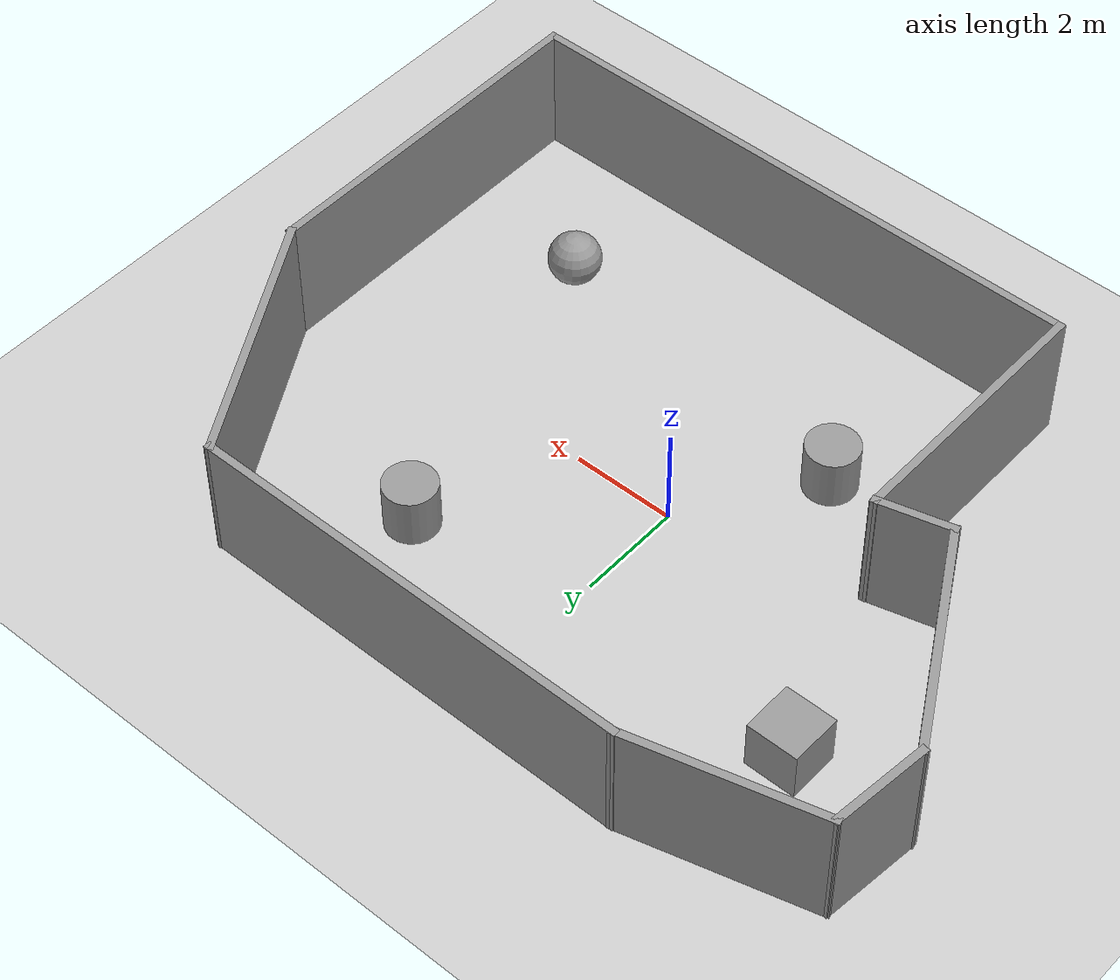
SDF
<sdf version="1.7">
 <world name="default">
  <light name="sun" type="directional">
   <pose>0 0 10 0 -0 0</pose>
   <diffuse>0.8 0.8 0.8 1</diffuse>
   <specular>0.2 0.2 0.2 1</specular>
   <attenuation>
    <range>1000</range>
    <constant>0.9</constant>
    <linear>0.01</linear>
    <quadratic>0.001</quadratic>
   </attenuation>
   <direction>-0.5 0.1 -0.9</direction>
   <spot><inner_angle>0</inner_angle><outer_angle>0</outer_angle><falloff>0</falloff></spot>
  </light>
  <model name="ground_plane">
   <static>1</static>
   <link name="link">
    <collision name="collision">
     <geometry><plane><normal>0 0 1</normal><size>100 100</size></plane></geometry>
     <surface>
      <contact><collide_bitmask>65535</collide_bitmask></contact>
      <friction><ode><mu>100</mu><mu2>50</mu2></ode></friction>
     </surface>
    </collision>
    <visual name="visual">
     <cast_shadows>0</cast_shadows>
     <geometry><plane><normal>0 0 1</normal><size>100 100</size></plane></geometry>
     <material>
      <script><uri>file://media/materials/scripts/gazebo.material</uri><name>Gazebo/Grey</name></script>
     </material>
    </visual>
   </link>
  </model>
  <gravity>0 0 -9.8</gravity>
  <magnetic_field>6e-06 2.3e-05 -4.2e-05</magnetic_field>
  <atmosphere type="adiabatic"/>
  <physics type="ode">
   <max_step_size>0.001</max_step_size>
   <real_time_factor>1</real_time_factor>
   <real_time_update_rate>1000</real_time_update_rate>
  </physics>
  <scene><ambient>0.4 0.4 0.4 1</ambient><background>0.7 0.7 0.7 1</background><shadows>1</shadows></scene>
  <audio><device>default</device></audio>
  <spherical_coordinates>
   <surface_model>EARTH_WGS84</surface_model>
   <latitude_deg>0</latitude_deg>
   <longitude_deg>0</longitude_deg>
   <elevation>0</elevation>
   <heading_deg>0</heading_deg>
  </spherical_coordinates>
  <model name="mywalls">
   <pose>0.370457 -0.248995 0 0 -0 0</pose>
   <link name="Wall_10">
    <collision name="Wall_10_Collision">
     <geometry><box><size>4.5 0.15 2.5</size></box></geometry>
     <pose>0 0 1.25 0 -0 0</pose>
    </collision>
    <visual name="Wall_10_Visual">
     <pose>0 0 1.25 0 -0 0</pose>
     <geometry><box><size>4.5 0.15 2.5</size></box></geometry>
     <material>
      <script><uri>file://media/materials/scripts/gazebo.material</uri><name>Gazebo/Grey</name></script>
      <ambient>1 1 1 1</ambient>
     </material>
     <meta><layer>0</layer></meta>
    </visual>
    <pose>-6.327 0.987109 0 0 -0 2.0944</pose>
   </link>
   <link name="Wall_12">
    <collision name="Wall_12_Collision">
     <geometry><box><size>5.25 0.15 2.5</size></box></geometry>
     <pose>0 0 1.25 0 -0 0</pose>
    </collision>
    <visual name="Wall_12_Visual">
     <pose>0 0 1.25 0 -0 0</pose>
     <geometry><box><size>5.25 0.15 2.5</size></box></geometry>
     <material>
      <script><uri>file://media/materials/scripts/gazebo.material</uri><name>Gazebo/Grey</name></script>
      <ambient>1 1 1 1</ambient>
     </material>
     <meta><layer>0</layer></meta>
    </visual>
    <pose>6.1395 3.41127 0 0 -0 2.0944</pose>
   </link>
   <link name="Wall_13">
    <collision name="Wall_13_Collision">
     <geometry><box><size>8.75 0.15 2.5</size></box></geometry>
     <pose>0 0 1.25 0 -0 0</pose>
    </collision>
    <visual name="Wall_13_Visual">
     <pose>0 0 1.25 0 -0 0</pose>
     <geometry><box><size>8.75 0.15 2.5</size></box></geometry>
     <material>
      <script><uri>file://media/materials/scripts/gazebo.material</uri><name>Gazebo/Grey</name></script>
      <ambient>1 1 1 1</ambient>
     </material>
     <meta><layer>0</layer></meta>
    </visual>
    <pose>0.5645 5.61964 0 0 -0 3.14159</pose>
   </link>
   <link name="Wall_14">
    <collision name="Wall_14_Collision">
     <geometry><box><size>3.75 0.15 2.5</size></box></geometry>
     <pose>0 0 1.25 0 -0 0</pose>
    </collision>
    <visual name="Wall_14_Visual">
     <pose>0 0 1.25 0 -0 0</pose>
     <geometry><box><size>3.75 0.15 2.5</size></box></geometry>
     <material>
      <script><uri>file://media/materials/scripts/gazebo.material</uri><name>Gazebo/Grey</name></script>
      <ambient>1 1 1 1</ambient>
     </material>
     <meta><layer>0</layer></meta>
    </visual>
    <pose>-5.47417 5.15376 0 0 -0 -2.87979</pose>
   </link>
   <link name="Wall_15">
    <collision name="Wall_15_Collision">
     <geometry><box><size>1.97833 0.15 2.5</size></box></geometry>
     <pose>0 0 1.25 0 -0 0</pose>
    </collision>
    <visual name="Wall_15_Visual">
     <pose>0 0 1.25 0 -0 0</pose>
     <geometry><box><size>1.97833 0.15 2.5</size></box></geometry>
     <material>
      <script><uri>file://media/materials/scripts/gazebo.material</uri><name>Gazebo/Grey</name></script>
      <ambient>1 1 1 1</ambient>
     </material>
     <meta><layer>0</layer></meta>
    </visual>
    <pose>-7.31367 3.7793 0 0 -0 -1.68132</pose>
   </link>
   <link name="Wall_5">
    <collision name="Wall_5_Collision">
     <geometry><box><size>1.5 0.15 2.5</size></box></geometry>
     <pose>0 0 1.25 0 -0 0</pose>
    </collision>
    <visual name="Wall_5_Visual">
     <pose>0 0 1.25 0 -0 0</pose>
     <geometry><box><size>1.5 0.15 2.5</size></box></geometry>
     <material>
      <script><uri>file://media/materials/scripts/gazebo.material</uri><name>Gazebo/Grey</name></script>
      <ambient>1 1 1 1</ambient>
     </material>
     <meta><layer>0</layer></meta>
    </visual>
    <pose>-4.5875 -0.721793 0 0 -0 0.261799</pose>
   </link>
   <link name="Wall_6">
    <collision name="Wall_6_Collision">
     <geometry><box><size>5.25 0.15 2.5</size></box></geometry>
     <pose>0 0 1.25 0 -0 0</pose>
    </collision>
    <visual name="Wall_6_Visual">
     <pose>0 0 1.25 0 -0 0</pose>
     <geometry><box><size>5.25 0.15 2.5</size></box></geometry>
     <material>
      <script><uri>file://media/materials/scripts/gazebo.material</uri><name>Gazebo/Grey</name></script>
      <ambient>1 1 1 1</ambient>
     </material>
     <meta><layer>0</layer></meta>
    </visual>
    <pose>-3.9355 -3.09709 0 0 -0 -1.5708</pose>
   </link>
   <link name="Wall_7">
    <collision name="Wall_7_Collision">
     <geometry><box><size>11.5 0.15 2.5</size></box></geometry>
     <pose>0 0 1.25 0 -0 0</pose>
    </collision>
    <visual name="Wall_7_Visual">
     <pose>0 0 1.25 0 -0 0</pose>
     <geometry><box><size>11.5 0.15 2.5</size></box></geometry>
     <material>
      <script><uri>file://media/materials/scripts/gazebo.material</uri><name>Gazebo/Grey</name></script>
      <ambient>1 1 1 1</ambient>
     </material>
     <meta><layer>0</layer></meta>
    </visual>
    <pose>1.7395 -5.64709 0 0 -0 0</pose>
   </link>
   <link name="Wall_8">
    <collision name="Wall_8_Collision">
     <geometry><box><size>7 0.15 2.5</size></box></geometry>
     <pose>0 0 1.25 0 -0 0</pose>
    </collision>
    <visual name="Wall_8_Visual">
     <pose>0 0 1.25 0 -0 0</pose>
     <geometry><box><size>7 0.15 2.5</size></box></geometry>
     <material>
      <script><uri>file://media/materials/scripts/gazebo.material</uri><name>Gazebo/Grey</name></script>
      <ambient>1 1 1 1</ambient>
     </material>
     <meta><layer>0</layer></meta>
    </visual>
    <pose>7.4145 -2.22209 0 0 -0 1.5708</pose>
   </link>
   <static>1</static>
  </model>
  <model name="unit_cylinder">
   <pose>3.19785 2.92002 0.5 0 -0 0</pose>
   <link name="link">
    <inertial>
     <mass>1</mass>
     <inertia><ixx>0.145833</ixx><ixy>0</ixy><ixz>0</ixz><iyy>0.145833</iyy><iyz>0</iyz><izz>0.125</izz></inertia>
    </inertial>
    <collision name="collision">
     <geometry><cylinder><radius>0.5</radius><length>1</length></cylinder></geometry>
    </collision>
    <visual name="visual">
     <geometry><cylinder><radius>0.5</radius><length>1</length></cylinder></geometry>
     <material>
      <script><name>Gazebo/Grey</name><uri>file://media/materials/scripts/gazebo.material</uri></script>
     </material>
    </visual>
   </link>
  </model>
  <model name="unit_cylinder_0">
   <pose>-1.59938 -2.38654 0.5 0 -0 0</pose>
   <link name="link">
    <inertial>
     <mass>1</mass>
     <inertia><ixx>0.145833</ixx><ixy>0</ixy><ixz>0</ixz><iyy>0.145833</iyy><iyz>0</iyz><izz>0.125</izz></inertia>
    </inertial>
    <collision name="collision">
     <geometry><cylinder><radius>0.5</radius><length>1</length></cylinder></geometry>
    </collision>
    <visual name="visual">
     <geometry><cylinder><radius>0.5</radius><length>1</length></cylinder></geometry>
     <material>
      <script><name>Gazebo/Grey</name><uri>file://media/materials/scripts/gazebo.material</uri></script>
     </material>
    </visual>
   </link>
  </model>
  <model name="unit_box">
   <pose>-4.65604 2.60051 0.5 0 -0 0</pose>
   <link name="link">
    <inertial>
     <mass>1</mass>
     <inertia>
      <ixx>0.166667</ixx>
      <ixy>0</ixy>
      <ixz>0</ixz>
      <iyy>0.166667</iyy>
      <iyz>0</iyz>
      <izz>0.166667</izz>
     </inertia>
    </inertial>
    <collision name="collision"><geometry><box><size>1 1 1</size></box></geometry></collision>
    <visual name="visual">
     <geometry><box><size>1 1 1</size></box></geometry>
     <material>
      <script><name>Gazebo/Grey</name><uri>file://media/materials/scripts/gazebo.material</uri></script>
     </material>
    </visual>
   </link>
  </model>
  <model name="unit_sphere">
   <pose>4.974 -3.28086 0.5 0 -0 0</pose>
   <link name="link">
    <inertial>
     <mass>1</mass>
     <inertia><ixx>0.1</ixx><ixy>0</ixy><ixz>0</ixz><iyy>0.1</iyy><iyz>0</iyz><izz>0.1</izz></inertia>
    </inertial>
    <collision name="collision"><geometry><sphere><radius>0.5</radius></sphere></geometry></collision>
    <visual name="visual">
     <geometry><sphere><radius>0.5</radius></sphere></geometry>
     <material>
      <script><name>Gazebo/Grey</name><uri>file://media/materials/scripts/gazebo.material</uri></script>
     </material>
    </visual>
   </link>
  </model>
 </world>
</sdf>
